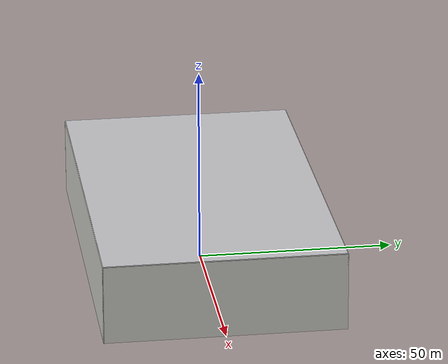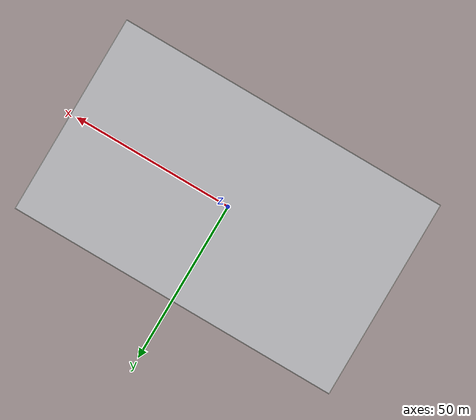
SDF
<sdf version="1.9">
 <world name="warehouse">
  <model name="warehouse_building">
   <static>true</static>
   <link name="structure">
    <visual name="floor_v">
     <pose>0 0 0.002 0 0 0</pose>
     <geometry><mesh><uri>model://warehouse_assets/meshes/floor_tile.obj</uri></mesh></geometry>
     <material>
      <ambient>1 1 1 1</ambient>
      <diffuse>1 1 1 1</diffuse>
      <specular>0.04 0.04 0.04 1</specular>
      <pbr>
       <metal>
        <albedo_map>model://warehouse_assets/materials/textures/floor.png</albedo_map>
        <metalness>0.0</metalness>
        <roughness>0.95</roughness>
       </metal>
      </pbr>
     </material>
    </visual>
    <collision name="floor_c">
     <pose>0 0 -0.1 0 0 0</pose>
     <geometry><box><size>100 60 0.2</size></box></geometry>
    </collision>
    <visual name="ceiling_v">
     <pose>0 0 20.1 0 0 0</pose>
     <geometry><box><size>100 60 0.2</size></box></geometry>
     <material>
      <ambient>0.4 0.4 0.41 1</ambient>
      <diffuse>0.8 0.8 0.82 1</diffuse>
      <specular>0.05 0.05 0.05 1</specular>
      <pbr><metal><metalness>0.0</metalness><roughness>0.9</roughness></metal></pbr>
     </material>
    </visual>
    <collision name="ceiling_c">
     <pose>0 0 20.1 0 0 0</pose>
     <geometry><box><size>100 60 0.2</size></box></geometry>
    </collision>
    <visual name="wall_xp_v">
     <pose>50.1 0 10 0 0 0</pose>
     <geometry><box><size>0.2 60.4 20</size></box></geometry>
     <material>
      <ambient>0.39 0.39 0.375 1</ambient>
      <diffuse>0.78 0.78 0.75 1</diffuse>
      <specular>0.05 0.05 0.05 1</specular>
      <pbr><metal><metalness>0.0</metalness><roughness>0.9</roughness></metal></pbr>
     </material>
    </visual>
    <collision name="wall_xp_c">
     <pose>50.1 0 10 0 0 0</pose>
     <geometry><box><size>0.2 60.4 20</size></box></geometry>
    </collision>
    <visual name="wall_xn_v">
     <pose>-50.1 0 10 0 0 0</pose>
     <geometry><box><size>0.2 60.4 20</size></box></geometry>
     <material>
      <ambient>0.39 0.39 0.375 1</ambient>
      <diffuse>0.78 0.78 0.75 1</diffuse>
      <specular>0.05 0.05 0.05 1</specular>
      <pbr><metal><metalness>0.0</metalness><roughness>0.9</roughness></metal></pbr>
     </material>
    </visual>
    <collision name="wall_xn_c">
     <pose>-50.1 0 10 0 0 0</pose>
     <geometry><box><size>0.2 60.4 20</size></box></geometry>
    </collision>
    <visual name="wall_yp_v">
     <pose>0 30.1 10 0 0 0</pose>
     <geometry><box><size>100.4 0.2 20</size></box></geometry>
     <material>
      <ambient>0.39 0.39 0.375 1</ambient>
      <diffuse>0.78 0.78 0.75 1</diffuse>
      <specular>0.05 0.05 0.05 1</specular>
      <pbr><metal><metalness>0.0</metalness><roughness>0.9</roughness></metal></pbr>
     </material>
    </visual>
    <collision name="wall_yp_c">
     <pose>0 30.1 10 0 0 0</pose>
     <geometry><box><size>100.4 0.2 20</size></box></geometry>
    </collision>
    <visual name="wall_yn_v">
     <pose>0 -30.1 10 0 0 0</pose>
     <geometry><box><size>100.4 0.2 20</size></box></geometry>
     <material>
      <ambient>0.39 0.39 0.375 1</ambient>
      <diffuse>0.78 0.78 0.75 1</diffuse>
      <specular>0.05 0.05 0.05 1</specular>
      <pbr><metal><metalness>0.0</metalness><roughness>0.9</roughness></metal></pbr>
     </material>
    </visual>
    <collision name="wall_yn_c">
     <pose>0 -30.1 10 0 0 0</pose>
     <geometry><box><size>100.4 0.2 20</size></box></geometry>
    </collision>
   </link>
  </model>
 </world>
</sdf>
